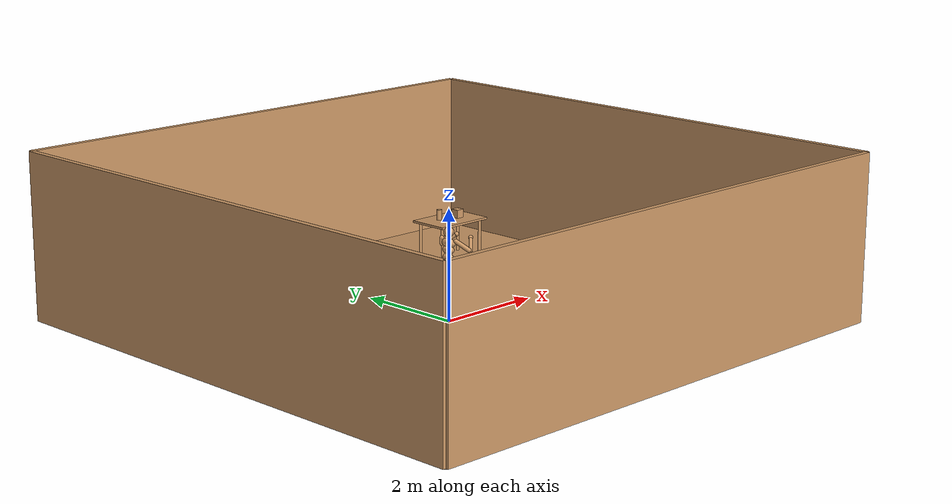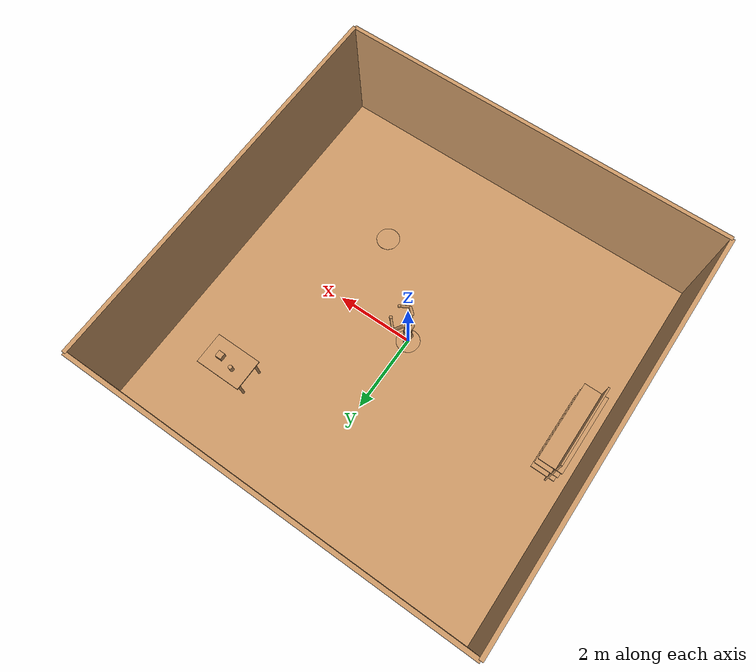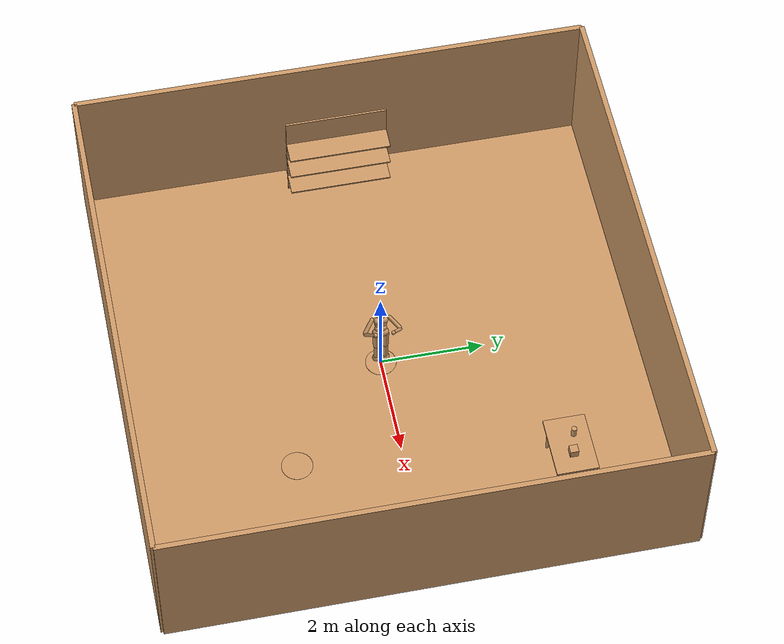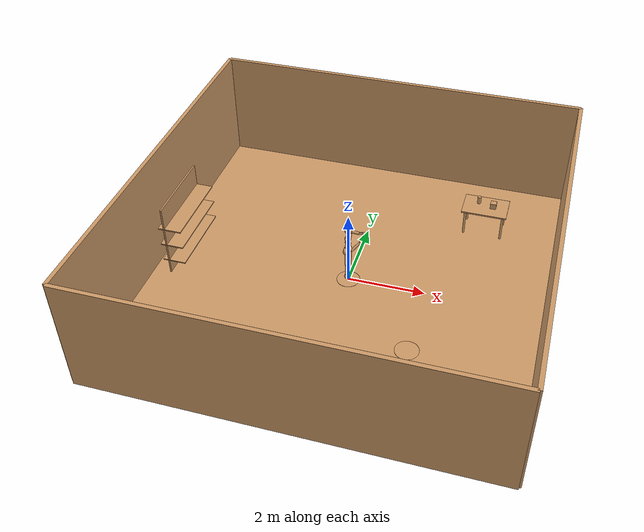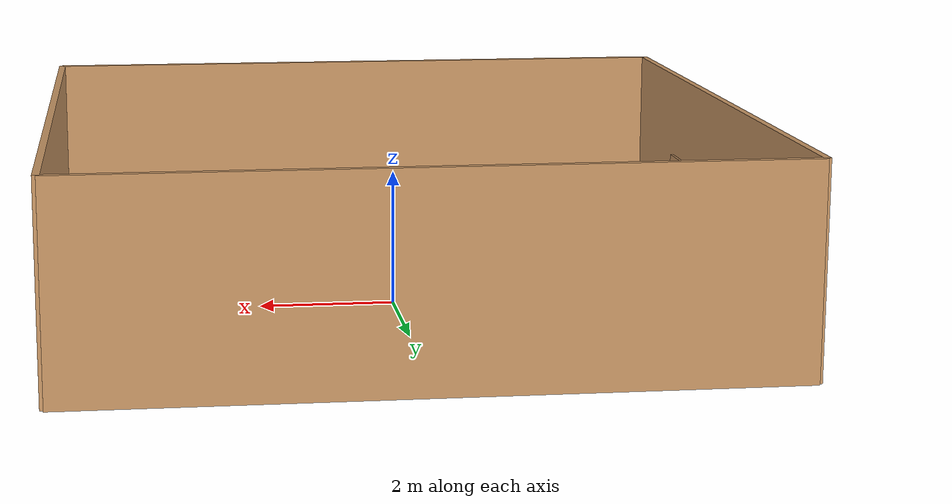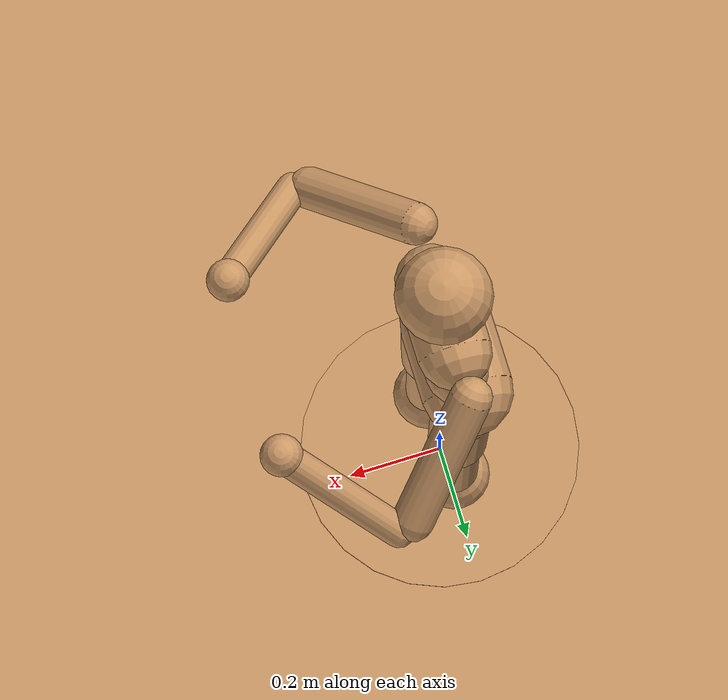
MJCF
<mujoco model="fleetos_lab">
    <compiler angle="degree" inertiafromgeom="true"/>
    <default>
        <joint armature="1" damping="1" limited="true"/>
        <geom conaffinity="1" condim="1" contype="1" margin="0.001" material="geom" rgba="0.8 0.6 .4 1"/>
        <motor ctrllimited="true" ctrlrange="-.4 .4"/>
    </default>
    <option integrator="RK4" iterations="50" solver="PGS" timestep="0.003">
    </option>
    <size nkey="5" nuser_geom="1"/>

    <visual>
        <map fogend="14" fogstart="10"/>
        <quality shadowsize="4096"/>
        <global offwidth="1280" offheight="720"/>
    </visual>

    <asset>
        <texture builtin="gradient" height="512" rgb1=".15 .2 .25" rgb2=".02 .02 .04" type="skybox" width="512"/>

        <!-- Floor: industrial tile -->
        <texture builtin="checker" height="512" name="tex_floor" rgb1="0.15 0.15 0.18" rgb2="0.2 0.2 0.23" type="2d" width="512"/>
        <material name="mat_floor" reflectance="0.3" shininess="0.5" specular="0.4" texrepeat="10 10" texture="tex_floor"/>

        <!-- Walls -->
        <texture builtin="flat" height="64" name="tex_wall" rgb1="0.25 0.27 0.3" rgb2="0.22 0.24 0.27" type="2d" width="64"/>
        <material name="mat_wall" texture="tex_wall" texrepeat="4 2" rgba="0.35 0.37 0.4 1"/>

        <!-- Robot body -->
        <texture builtin="flat" height="128" mark="cross" markrgb="0.4 0.6 0.8" name="texgeom" random="0.01" rgb1="0.3 0.35 0.4" rgb2="0.3 0.35 0.4" type="cube" width="128"/>
        <material name="geom" texture="texgeom" texuniform="true"/>

        <!-- Props -->
        <material name="mat_table" rgba="0.4 0.35 0.3 1" specular="0.2"/>
        <material name="mat_box" rgba="0.7 0.3 0.2 1"/>
        <material name="mat_cylinder" rgba="0.2 0.5 0.7 1"/>
        <material name="mat_marker" rgba="0.1 0.8 0.3 0.5"/>
    </asset>

    <worldbody>
        <!-- Lighting: overhead panels like a lab -->
        <light cutoff="100" diffuse="0.9 0.9 1.0" dir="0 0 -1" directional="true" pos="0 0 4" specular="0.3 0.3 0.3"/>
        <light diffuse="0.4 0.4 0.5" dir="0 -1 -0.5" pos="0 5 3" specular="0.1 0.1 0.1"/>
        <light diffuse="0.3 0.3 0.4" dir="0 1 -0.5" pos="0 -5 3" specular="0.1 0.1 0.1"/>

        <!-- ===== Room Structure ===== -->
        <!-- Floor (10x10m) -->
        <geom name="floor" type="plane" size="5 5 0.1" pos="0 0 0" material="mat_floor" condim="3" friction="1 .1 .1"/>

        <!-- Walls (3m tall) -->
        <geom name="wall_north" type="box" size="5 0.05 1.5" pos="0 5 1.5" material="mat_wall" contype="1" conaffinity="1"/>
        <geom name="wall_south" type="box" size="5 0.05 1.5" pos="0 -5 1.5" material="mat_wall" contype="1" conaffinity="1"/>
        <geom name="wall_east" type="box" size="0.05 5 1.5" pos="5 0 1.5" material="mat_wall" contype="1" conaffinity="1"/>
        <geom name="wall_west" type="box" size="0.05 5 1.5" pos="-5 0 1.5" material="mat_wall" contype="1" conaffinity="1"/>

        <!-- ===== Lab Props ===== -->
        <!-- Workbench -->
        <body name="table" pos="3 3 0">
            <geom name="tabletop" type="box" size="0.6 0.4 0.02" pos="0 0 0.75" material="mat_table" mass="20"/>
            <geom name="table_leg1" type="cylinder" size="0.03 0.37" pos="-0.5 -0.3 0.37" material="mat_table"/>
            <geom name="table_leg2" type="cylinder" size="0.03 0.37" pos="0.5 -0.3 0.37" material="mat_table"/>
            <geom name="table_leg3" type="cylinder" size="0.03 0.37" pos="-0.5 0.3 0.37" material="mat_table"/>
            <geom name="table_leg4" type="cylinder" size="0.03 0.37" pos="0.5 0.3 0.37" material="mat_table"/>
            <!-- Box on table -->
            <geom name="red_box" type="box" size="0.08 0.08 0.08" pos="0.2 0 0.85" material="mat_box" mass="0.5"/>
            <geom name="blue_cylinder" type="cylinder" size="0.05 0.1" pos="-0.2 0.1 0.87" material="mat_cylinder" mass="0.3"/>
        </body>

        <!-- Shelf unit against wall -->
        <body name="shelf" pos="-4.5 0 0">
            <geom name="shelf_back" type="box" size="0.02 1.0 1.0" pos="0 0 1.0" material="mat_table"/>
            <geom name="shelf_bot" type="box" size="0.3 1.0 0.015" pos="0.15 0 0.4" material="mat_table"/>
            <geom name="shelf_mid" type="box" size="0.3 1.0 0.015" pos="0.15 0 0.9" material="mat_table"/>
            <geom name="shelf_top" type="box" size="0.3 1.0 0.015" pos="0.15 0 1.4" material="mat_table"/>
        </body>

        <!-- Floor markers (navigation waypoints) -->
        <geom name="marker_a" type="cylinder" size="0.3 0.001" pos="0 0 0.001" material="mat_marker" contype="0" conaffinity="0"/>
        <geom name="marker_b" type="cylinder" size="0.3 0.001" pos="2 -2 0.001" material="mat_marker" contype="0" conaffinity="0"/>

        <!-- ===== Cameras ===== -->
        <!-- Main overhead angled view (good for seeing the whole room) -->
        <camera name="room_overview" pos="0 -8 6" xyaxes="1 0 0 0 0.6 1" fovy="60"/>
        <!-- Front view -->
        <camera name="front_view" pos="0 -6 2" xyaxes="1 0 0 0 0.3 1" fovy="50"/>
        <!-- Corner surveillance style -->
        <camera name="corner_cam" pos="4.5 -4.5 2.8" xyaxes="1 1 0 0 0 1" fovy="70"/>
        <!-- Top down -->
        <camera name="top_down" pos="0 0 8" xyaxes="1 0 0 0 1 0" fovy="60"/>

        <!-- ===== Humanoid Robot (initial) ===== -->
        <body name="torso" pos="0 0 1.4">
            <camera name="track" mode="trackcom" pos="0 -4 0" xyaxes="1 0 0 0 0 1"/>
            <joint armature="0" damping="0" limited="false" name="root" pos="0 0 0" stiffness="0" type="free"/>
            <geom fromto="0 -.07 0 0 .07 0" name="torso1" size="0.07" type="capsule"/>
            <geom name="head" pos="0 0 .19" size=".09" type="sphere" user="258"/>
            <geom fromto="-.01 -.06 -.12 -.01 .06 -.12" name="uwaist" size="0.06" type="capsule"/>
            <body name="lwaist" pos="-.01 0 -0.260" quat="1.000 0 -0.002 0">
                <geom fromto="0 -.06 0 0 .06 0" name="lwaist" size="0.06" type="capsule"/>
                <joint armature="0.02" axis="0 0 1" damping="5" name="abdomen_z" pos="0 0 0.065" range="-45 45" stiffness="20" type="hinge"/>
                <joint armature="0.02" axis="0 1 0" damping="5" name="abdomen_y" pos="0 0 0.065" range="-75 30" stiffness="10" type="hinge"/>
                <body name="pelvis" pos="0 0 -0.165" quat="1.000 0 -0.002 0">
                    <joint armature="0.02" axis="1 0 0" damping="5" name="abdomen_x" pos="0 0 0.1" range="-35 35" stiffness="10" type="hinge"/>
                    <geom fromto="-.02 -.07 0 -.02 .07 0" name="butt" size="0.09" type="capsule"/>
                    <body name="right_thigh" pos="0 -0.1 -0.04">
                        <joint armature="0.01" axis="1 0 0" damping="5" name="right_hip_x" pos="0 0 0" range="-25 5" stiffness="10" type="hinge"/>
                        <joint armature="0.01" axis="0 0 1" damping="5" name="right_hip_z" pos="0 0 0" range="-60 35" stiffness="10" type="hinge"/>
                        <joint armature="0.0080" axis="0 1 0" damping="5" name="right_hip_y" pos="0 0 0" range="-110 20" stiffness="20" type="hinge"/>
                        <geom fromto="0 0 0 0 0.01 -.34" name="right_thigh1" size="0.06" type="capsule"/>
                        <body name="right_shin" pos="0 0.01 -0.403">
                            <joint armature="0.0060" axis="0 -1 0" name="right_knee" pos="0 0 .02" range="-160 -2" type="hinge"/>
                            <geom fromto="0 0 0 0 0 -.3" name="right_shin1" size="0.049" type="capsule"/>
                            <body name="right_foot" pos="0 0 -0.45">
                                <geom name="right_foot" pos="0 0 0.1" size="0.075" type="sphere" user="0"/>
                            </body>
                        </body>
                    </body>
                    <body name="left_thigh" pos="0 0.1 -0.04">
                        <joint armature="0.01" axis="-1 0 0" damping="5" name="left_hip_x" pos="0 0 0" range="-25 5" stiffness="10" type="hinge"/>
                        <joint armature="0.01" axis="0 0 -1" damping="5" name="left_hip_z" pos="0 0 0" range="-60 35" stiffness="10" type="hinge"/>
                        <joint armature="0.01" axis="0 1 0" damping="5" name="left_hip_y" pos="0 0 0" range="-110 20" stiffness="20" type="hinge"/>
                        <geom fromto="0 0 0 0 -0.01 -.34" name="left_thigh1" size="0.06" type="capsule"/>
                        <body name="left_shin" pos="0 -0.01 -0.403">
                            <joint armature="0.0060" axis="0 -1 0" name="left_knee" pos="0 0 .02" range="-160 -2" stiffness="1" type="hinge"/>
                            <geom fromto="0 0 0 0 0 -.3" name="left_shin1" size="0.049" type="capsule"/>
                            <body name="left_foot" pos="0 0 -0.45">
                                <geom name="left_foot" type="sphere" size="0.075" pos="0 0 0.1" user="0"/>
                            </body>
                        </body>
                    </body>
                </body>
            </body>
            <body name="right_upper_arm" pos="0 -0.17 0.06">
                <joint armature="0.0068" axis="2 1 1" name="right_shoulder1" pos="0 0 0" range="-85 60" stiffness="1" type="hinge"/>
                <joint armature="0.0051" axis="0 -1 1" name="right_shoulder2" pos="0 0 0" range="-85 60" stiffness="1" type="hinge"/>
                <geom fromto="0 0 0 .16 -.16 -.16" name="right_uarm1" size="0.04 0.16" type="capsule"/>
                <body name="right_lower_arm" pos=".18 -.18 -.18">
                    <joint armature="0.0028" axis="0 -1 1" name="right_elbow" pos="0 0 0" range="-90 50" stiffness="0" type="hinge"/>
                    <geom fromto="0.01 0.01 0.01 .17 .17 .17" name="right_larm" size="0.031" type="capsule"/>
                    <geom name="right_hand" pos=".18 .18 .18" size="0.04" type="sphere"/>
                </body>
            </body>
            <body name="left_upper_arm" pos="0 0.17 0.06">
                <joint armature="0.0068" axis="2 -1 1" name="left_shoulder1" pos="0 0 0" range="-60 85" stiffness="1" type="hinge"/>
                <joint armature="0.0051" axis="0 1 1" name="left_shoulder2" pos="0 0 0" range="-60 85" stiffness="1" type="hinge"/>
                <geom fromto="0 0 0 .16 .16 -.16" name="left_uarm1" size="0.04 0.16" type="capsule"/>
                <body name="left_lower_arm" pos=".18 .18 -.18">
                    <joint armature="0.0028" axis="0 -1 -1" name="left_elbow" pos="0 0 0" range="-90 50" stiffness="0" type="hinge"/>
                    <geom fromto="0.01 -0.01 0.01 .17 -.17 .17" name="left_larm" size="0.031" type="capsule"/>
                    <geom name="left_hand" pos=".18 -.18 .18" size="0.04" type="sphere"/>
                </body>
            </body>
        </body>
    </worldbody>

    <tendon>
        <fixed name="left_hipknee">
            <joint coef="-1" joint="left_hip_y"/>
            <joint coef="1" joint="left_knee"/>
        </fixed>
        <fixed name="right_hipknee">
            <joint coef="-1" joint="right_hip_y"/>
            <joint coef="1" joint="right_knee"/>
        </fixed>
    </tendon>

    <actuator>
        <motor gear="100" joint="abdomen_y" name="abdomen_y"/>
        <motor gear="100" joint="abdomen_z" name="abdomen_z"/>
        <motor gear="100" joint="abdomen_x" name="abdomen_x"/>
        <motor gear="100" joint="right_hip_x" name="right_hip_x"/>
        <motor gear="100" joint="right_hip_z" name="right_hip_z"/>
        <motor gear="300" joint="right_hip_y" name="right_hip_y"/>
        <motor gear="200" joint="right_knee" name="right_knee"/>
        <motor gear="100" joint="left_hip_x" name="left_hip_x"/>
        <motor gear="100" joint="left_hip_z" name="left_hip_z"/>
        <motor gear="300" joint="left_hip_y" name="left_hip_y"/>
        <motor gear="200" joint="left_knee" name="left_knee"/>
        <motor gear="25" joint="right_shoulder1" name="right_shoulder1"/>
        <motor gear="25" joint="right_shoulder2" name="right_shoulder2"/>
        <motor gear="25" joint="right_elbow" name="right_elbow"/>
        <motor gear="25" joint="left_shoulder1" name="left_shoulder1"/>
        <motor gear="25" joint="left_shoulder2" name="left_shoulder2"/>
        <motor gear="25" joint="left_elbow" name="left_elbow"/>
    </actuator>
</mujoco>
